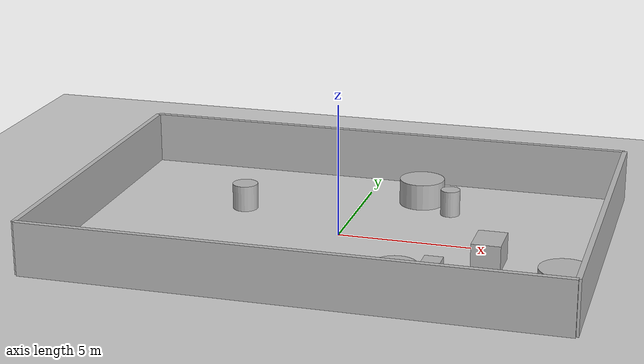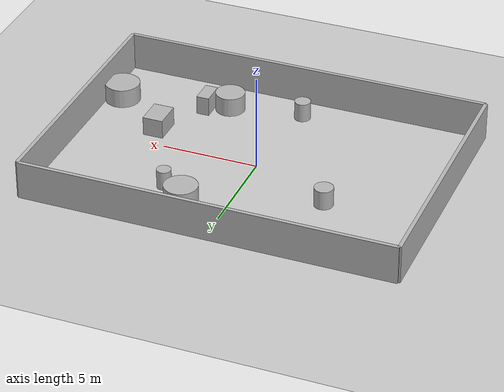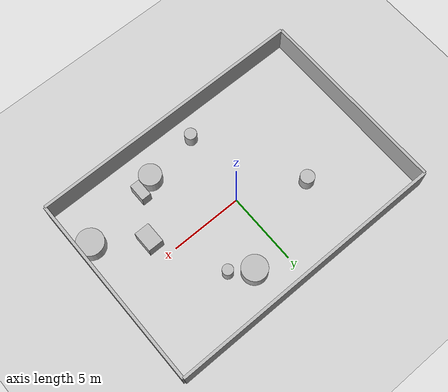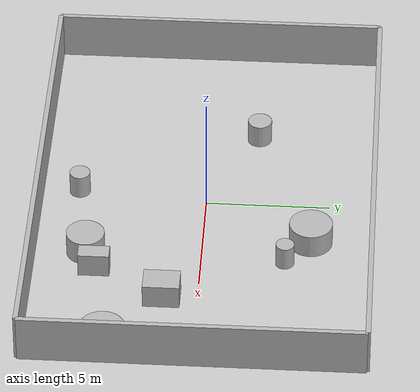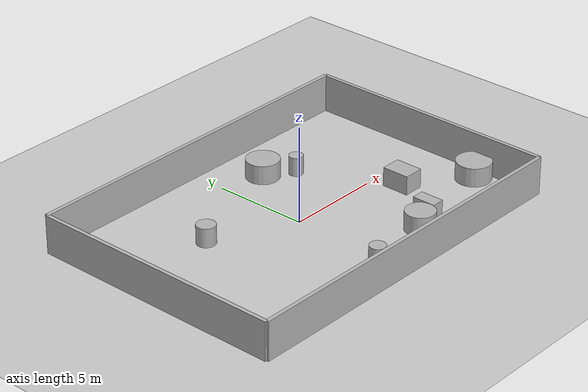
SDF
<?xml version="1.0"?>
<sdf version="1.6">
  <world name="env_3">

    <include><uri>model://ground_plane</uri></include>
    <include><uri>model://sun</uri></include>

    <!-- WALLS -->
    <model name="wall_north"><static>true</static><pose>0 6.7696572297496145 1 0 0 0</pose>
      <link name="link"><collision name="collision">
        <geometry><box><size>19.439297994696872 0.2 2</size></box></geometry>
      </collision><visual name="visual">
        <geometry><box><size>19.439297994696872 0.2 2</size></box></geometry>
      </visual></link>
    </model>

    <model name="wall_south"><static>true</static><pose>0 -6.7696572297496145 1 0 0 0</pose>
      <link name="link"><collision name="collision">
        <geometry><box><size>19.439297994696872 0.2 2</size></box></geometry>
      </collision><visual name="visual">
        <geometry><box><size>19.439297994696872 0.2 2</size></box></geometry>
      </visual></link>
    </model>

    <model name="wall_east"><static>true</static><pose>9.719648997348436 0 1 0 0 1.57</pose>
      <link name="link"><collision name="collision">
        <geometry><box><size>13.539314459499229 0.2 2</size></box></geometry>
      </collision><visual name="visual">
        <geometry><box><size>13.539314459499229 0.2 2</size></box></geometry>
      </visual></link>
    </model>

    <model name="wall_west"><static>true</static><pose>-9.719648997348436 0 1 0 0 1.57</pose>
      <link name="link"><collision name="collision">
        <geometry><box><size>13.539314459499229 0.2 2</size></box></geometry>
      </collision><visual name="visual">
        <geometry><box><size>13.539314459499229 0.2 2</size></box></geometry>
      </visual></link>
    </model>

    <!-- SENSOR -->

    <model name="lidar_sensor">
      <static>true</static>
      <pose>-1.0907854001421828 -3.8870999001081423 0.4 0 0 0</pose>
      <link name="link">
        <sensor name="lidar" type="ray">
          <pose>0 0 0 0 0 0</pose>
          <visualize>true</visualize>
          <always_on>true</always_on>
          <update_rate>10</update_rate>
          <ray>
            <scan><horizontal>
              <samples>240</samples>
              <resolution>1</resolution>
              <min_angle>-3.14159</min_angle>
              <max_angle>3.14159</max_angle>
            </horizontal></scan>
            <range><min>0.15</min><max>20.0</max><resolution>0.01</resolution></range>
          </ray>
          <plugin name="lidar_plugin" filename="liblidar_plugin.so"/>
        </sensor>
      </link>
    </model>

    <!-- OBSTACLES -->

    <model name="obstacle_0">
      <static>true</static>
      <pose>5.923371029169825 -1.4181639609026542 0.5 0 0 0</pose>
      <link name="link">
        <collision name="collision">
          <geometry><box><size>1.07 1.46 1.0</size></box></geometry>
        </collision>
        <visual name="visual">
          <geometry><box><size>1.07 1.46 1.0</size></box></geometry>
        </visual>
      </link>
    </model>

    <model name="obstacle_1">
      <static>true</static>
      <pose>2.2042915226372255 4.3200198309176026 0.5 0 0 0</pose>
      <link name="link">
        <collision name="collision">
          <geometry><cylinder><radius>0.87</radius><length>1.0</length></cylinder></geometry>
        </collision>
        <visual name="visual">
          <geometry><cylinder><radius>0.87</radius><length>1.0</length></cylinder></geometry>
        </visual>
      </link>
    </model>

    <model name="obstacle_2">
      <static>true</static>
      <pose>8.881903824712225 -3.524072864471382 0.5 0 0 0</pose>
      <link name="link">
        <collision name="collision">
          <geometry><cylinder><radius>0.92</radius><length>1.0</length></cylinder></geometry>
        </collision>
        <visual name="visual">
          <geometry><cylinder><radius>0.92</radius><length>1.0</length></cylinder></geometry>
        </visual>
      </link>
    </model>

    <model name="obstacle_3">
      <static>true</static>
      <pose>4.400868204951946 -4.213832586817002 0.5 0 0 0</pose>
      <link name="link">
        <collision name="collision">
          <geometry><box><size>0.67 1.24 1.0</size></box></geometry>
        </collision>
        <visual name="visual">
          <geometry><box><size>0.67 1.24 1.0</size></box></geometry>
        </visual>
      </link>
    </model>

    <model name="obstacle_4">
      <static>true</static>
      <pose>3.5311693310385177 3.335554343075235 0.5 0 0 0</pose>
      <link name="link">
        <collision name="collision">
          <geometry><cylinder><radius>0.37</radius><length>1.0</length></cylinder></geometry>
        </collision>
        <visual name="visual">
          <geometry><cylinder><radius>0.37</radius><length>1.0</length></cylinder></geometry>
        </visual>
      </link>
    </model>

    <model name="obstacle_5">
      <static>true</static>
      <pose>3.2864165953848765 -4.64577094499716 0.5 0 0 0</pose>
      <link name="link">
        <collision name="collision">
          <geometry><cylinder><radius>0.77</radius><length>1.0</length></cylinder></geometry>
        </collision>
        <visual name="visual">
          <geometry><cylinder><radius>0.77</radius><length>1.0</length></cylinder></geometry>
        </visual>
      </link>
    </model>

    <model name="obstacle_6">
      <static>true</static>
      <pose>-0.4930073540915476 -5.191656546650784 0.5 0 0 0</pose>
      <link name="link">
        <collision name="collision">
          <geometry><cylinder><radius>0.42</radius><length>1.0</length></cylinder></geometry>
        </collision>
        <visual name="visual">
          <geometry><cylinder><radius>0.42</radius><length>1.0</length></cylinder></geometry>
        </visual>
      </link>
    </model>

    <model name="obstacle_7">
      <static>true</static>
      <pose>-4.286054631593906 1.9643808373255096 0.5 0 0 0</pose>
      <link name="link">
        <collision name="collision">
          <geometry><cylinder><radius>0.49</radius><length>1.0</length></cylinder></geometry>
        </collision>
        <visual name="visual">
          <geometry><cylinder><radius>0.49</radius><length>1.0</length></cylinder></geometry>
        </visual>
      </link>
    </model>

  </world>
</sdf>
